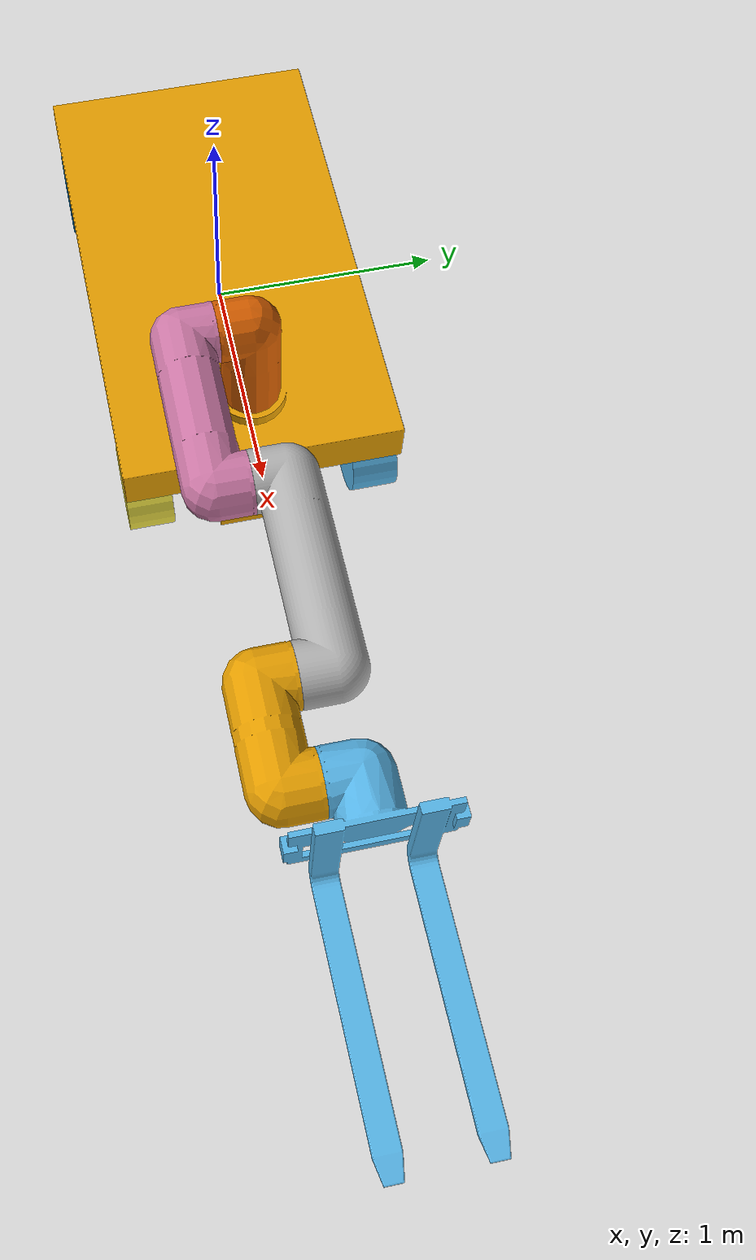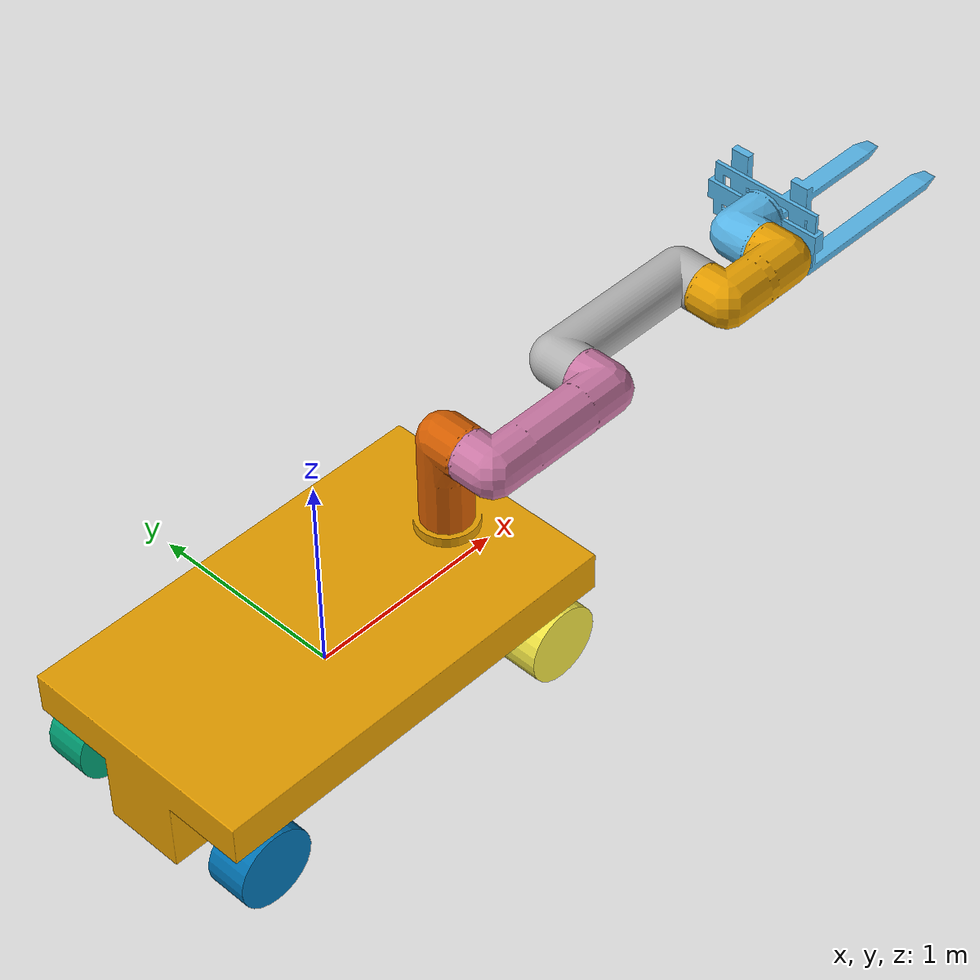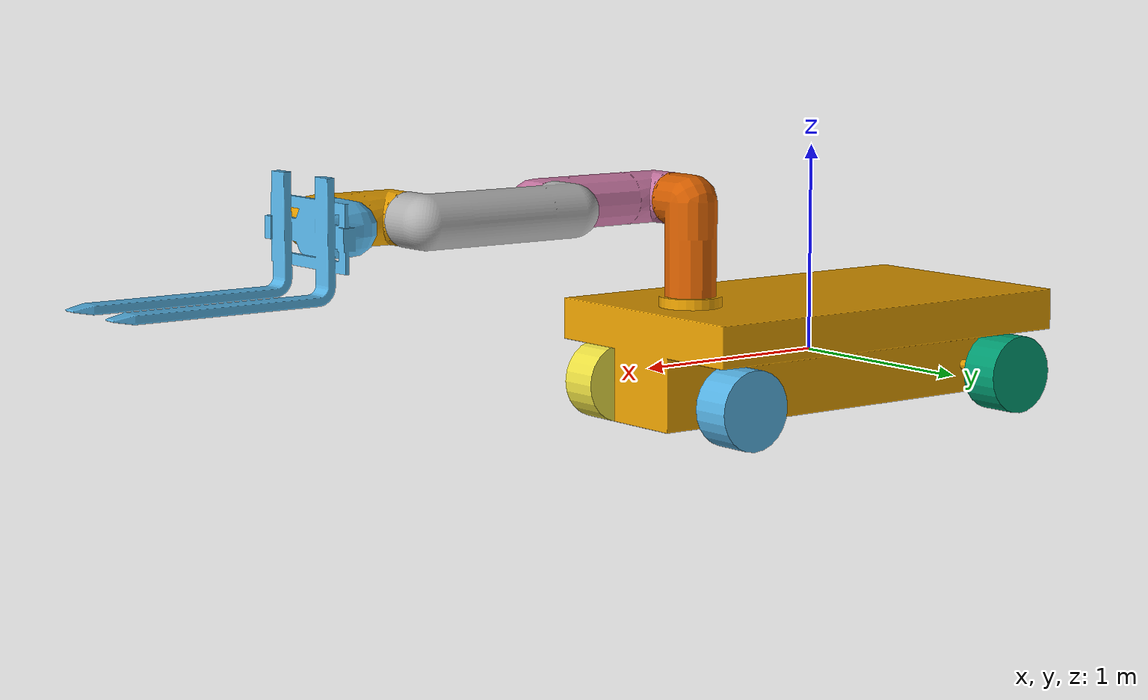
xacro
<?xml version='1.0'?>

<robot name="Forklift_robot" xmlns:xacro="http://www.ros.org/wiki/xacro">
  <xacro:include filename="$(find custom_robot_tutorial)/urdf/mobile_manipulator_robot.urdf.gazebo" />

<!-- MOBILE PLATFORM -->
<xacro:property name="base_length" value="2.1" />
<xacro:property name="base_width" value="1.2" />
<xacro:property name="base_height" value="0.55" />
<xacro:property name="base_density" value="1" />
<xacro:property name="base_mass" value="${base_length*base_height*base_width*base_density}" />
<link name="base_link">
  <visual>
    <origin xyz="0 0 0" rpy="0 0 0"/>
    <geometry>
      <mesh filename="package://custom_robot_tutorial/meshes/Base.stl" />
    </geometry>
  </visual>
  <collision>
    <origin xyz="0 0 0.0" rpy="0 0 0"/>
    <geometry>
      <box size="${base_length} ${base_width} ${base_height}"/>
    </geometry>
  </collision>
  <inertial>
    <origin xyz="0 0 0" rpy="0 0 0"/>
    <mass value="${base_mass}"/>
    <inertia
      ixx="${base_mass*(pow(base_height,2) + pow(base_width,2))/12}" ixy="0.0" ixz="0.0"
      iyy="${base_mass*(pow(base_length,2) + pow(base_height,2))/12}" iyz="0.0"
      izz="${base_mass*(pow(base_length,2) + pow(base_width,2))/12}"/>
  </inertial>
</link>

<!-- FRONT LEFT WHEEL-->
<joint type="continuous" name="front_left_wheel_joint">
  <origin xyz="0.85 0.5 -0.135" rpy="-${pi/2} 0 0"/>
  <child link="front_left_wheel_link"/>
  <parent link="base_link"/>
  <axis xyz="0 0 1" rpy="0 0 0"/>
  <limit effort="100" velocity="100"/>
</joint>

<xacro:property name="front_left_wheel_radius" value="0.19" />
<xacro:property name="front_left_wheel_length" value="0.2" />
<xacro:property name="front_left_wheel_density" value="1.0" />
<xacro:property name="front_left_wheel_mass" value="${pi*front_left_wheel_length*pow(front_left_wheel_radius,2)*front_left_wheel_density}" />

<link name="front_left_wheel_link">
  <visual>
    <origin xyz="0 0 0" rpy="0 0 0"/>
    <geometry>
      <cylinder length="${front_left_wheel_length}" radius="${front_left_wheel_radius}"/>
    </geometry>
  </visual>
  <collision>
    <origin xyz="0 0 0" rpy="0 0 0"/>
    <geometry>
      <cylinder length="${front_left_wheel_length}" radius="${front_left_wheel_radius}"/>
    </geometry>
  </collision>
  <inertial>
    <origin xyz="0 0 0" rpy="0 0 0"/>
    <mass value="${front_left_wheel_mass}"/>
    <inertia
      ixx="${front_left_wheel_mass*(3*pow(front_left_wheel_radius,2)+pow(front_left_wheel_length,2))/12}" ixy="0.0" ixz="0.0"
      iyy="${front_left_wheel_mass*(3*pow(front_left_wheel_radius,2)+pow(front_left_wheel_length,2))/12}" iyz="0.0"
      izz="${front_left_wheel_mass*pow(front_left_wheel_radius,2)/2}"/>
  </inertial>
</link>

<!-- BACK LEFT WHEEL-->
<joint type="continuous" name="back_left_wheel_joint">
  <origin xyz="-0.85 0.5 -0.135" rpy="-${pi/2} 0 0"/>
  <child link="back_left_wheel_link"/>
  <parent link="base_link"/>
  <axis xyz="0 0 1" rpy="0 0 0"/>
  <limit effort="100" velocity="100"/>
</joint>

<xacro:property name="back_left_wheel_radius" value="0.19" />
<xacro:property name="back_left_wheel_length" value="0.2" />
<xacro:property name="back_left_wheel_density" value="1.0" />
<xacro:property name="back_left_wheel_mass" value="${pi*back_left_wheel_length*pow(back_left_wheel_radius,2)*back_left_wheel_density}" />

<link name="back_left_wheel_link">
  <visual>
    <origin xyz="0 0 0" rpy="0 0 0"/>
    <geometry>
      <cylinder length="${back_left_wheel_length}" radius="${back_left_wheel_radius}"/>
    </geometry>
  </visual>
  <collision>
    <origin xyz="0 0 0" rpy="0 0 0"/>
    <geometry>
      <cylinder length="${back_left_wheel_length}" radius="${back_left_wheel_radius}"/>
    </geometry>
  </collision>
  <inertial>
    <origin xyz="0 0 0" rpy="0 0 0"/>
    <mass value="${back_left_wheel_mass}"/>
    <inertia
      ixx="${back_left_wheel_mass*(3*pow(back_left_wheel_radius,2)+pow(back_left_wheel_length,2))/12}" ixy="0.0" ixz="0.0"
      iyy="${back_left_wheel_mass*(3*pow(back_left_wheel_radius,2)+pow(back_left_wheel_length,2))/12}" iyz="0.0"
      izz="${back_left_wheel_mass*pow(back_left_wheel_radius,2)/2}"/>
  </inertial>
</link>

<!-- FRONT RIGHT WHEEL-->
<joint type="continuous" name="front_right_wheel_joint">
  <origin xyz="0.85 -0.5 -0.135" rpy="-${pi/2} 0 0"/>
  <child link="front_right_wheel_link"/>
  <parent link="base_link"/>
  <axis xyz="0 0 1" rpy="0 0 0"/>
  <limit effort="100" velocity="100"/>
</joint>

<xacro:property name="front_right_wheel_radius" value="0.19" />
<xacro:property name="front_right_wheel_length" value="0.2" />
<xacro:property name="front_right_wheel_density" value="1.0" />
<xacro:property name="front_right_wheel_mass" value="${pi*front_right_wheel_length*pow(front_right_wheel_radius,2)*front_right_wheel_density}" />

<link name="front_right_wheel_link">
  <visual>
    <origin xyz="0 0 0" rpy="0 0 0"/>
    <geometry>
      <cylinder length="${front_right_wheel_length}" radius="${front_right_wheel_radius}"/>
    </geometry>
  </visual>
  <collision>
    <origin xyz="0 0 0" rpy="0 0 0"/>
    <geometry>
      <cylinder length="${front_right_wheel_length}" radius="${front_right_wheel_radius}"/>
    </geometry>
  </collision>
  <inertial>
    <origin xyz="0 0 0" rpy="0 0 0"/>
    <mass value="${front_right_wheel_mass}"/>
    <inertia
      ixx="${front_right_wheel_mass*(3*pow(front_right_wheel_radius,2)+pow(front_right_wheel_length,2))/12}" ixy="0.0" ixz="0.0"
      iyy="${front_right_wheel_mass*(3*pow(front_right_wheel_radius,2)+pow(front_right_wheel_length,2))/12}" iyz="0.0"
      izz="${front_right_wheel_mass*pow(front_right_wheel_radius,2)/2}"/>
  </inertial>
</link>

<!-- BACK RIGHT WHEEL-->
<joint type="continuous" name="back_right_wheel_joint">
  <origin xyz="-0.85 -0.5 -0.135" rpy="-${pi/2} 0 0"/>
  <child link="back_right_wheel_link"/>
  <parent link="base_link"/>
  <axis xyz="0 0 1" rpy="0 0 0"/>
  <limit effort="100" velocity="100"/>
</joint>

<xacro:property name="back_right_wheel_radius" value="0.19" />
<xacro:property name="back_right_wheel_length" value="0.2" />
<xacro:property name="back_right_wheel_density" value="1.0" />
<xacro:property name="back_right_wheel_mass" value="${pi*back_right_wheel_length*pow(back_right_wheel_radius,2)*back_right_wheel_density}" />

<link name="back_right_wheel_link">
  <visual>
    <origin xyz="0 0 0" rpy="0 0 0"/>
    <geometry>
      <cylinder length="${back_right_wheel_length}" radius="${back_right_wheel_radius}"/>
    </geometry>
  </visual>
  <collision>
    <origin xyz="0 0 0" rpy="0 0 0"/>
    <geometry>
      <cylinder length="${back_right_wheel_length}" radius="${back_right_wheel_radius}"/>
    </geometry>
  </collision>
  <inertial>
    <origin xyz="0 0 0" rpy="0 0 0"/>
    <mass value="${back_right_wheel_mass}"/>
    <inertia
      ixx="${back_right_wheel_mass*(3*pow(back_right_wheel_radius,2)+pow(back_right_wheel_length,2))/12}" ixy="0.0" ixz="0.0"
      iyy="${back_right_wheel_mass*(3*pow(back_right_wheel_radius,2)+pow(back_right_wheel_length,2))/12}" iyz="0.0"
      izz="${back_right_wheel_mass*pow(back_right_wheel_radius,2)/2}"/>
  </inertial>
</link>

<!-- ARM BASE-->
<joint type="revolute" name="arm_base_joint">
  <origin xyz="0.75 0 0.325" rpy="0 0 0"/>
  <child link="arm_base_link"/>
  <parent link="base_link"/>
  <axis xyz="0 0 1" rpy="0 0 0"/>
  <limit effort="100" velocity="100" lower="-${pi}" upper="${pi}"/>
</joint>

<xacro:property name="arm_base_radius" value="0.125" />
<xacro:property name="arm_base_length" value="0.375" />
<xacro:property name="arm_base_density" value="1.0" />
<xacro:property name="arm_base_mass" value="${pi*arm_base_length*pow(arm_base_radius,2)*arm_base_density}" />

<link name="arm_base_link">
  <visual>
    <origin xyz="0 0 0" rpy="0 0 0"/>
    <geometry>
      <mesh filename="package://custom_robot_tutorial/meshes/arm_base_v2.stl" />
    </geometry>
  </visual>
  <collision>
    <origin xyz="0 0 ${arm_base_length/2}" rpy="0 0 0"/>
    <geometry>
      <cylinder length="${arm_base_length}" radius="${arm_base_radius}"/>
    </geometry>
  </collision>
  <inertial>
    <origin xyz="0 0 0" rpy="0 0 0"/>
    <mass value="${arm_base_mass}"/>
    <inertia
      ixx="${arm_base_mass*(3*pow(arm_base_radius,2)+pow(arm_base_length,2))/12}" ixy="0.0" ixz="0.0"
      iyy="${arm_base_mass*(3*pow(arm_base_radius,2)+pow(arm_base_length,2))/12}" iyz="0.0"
      izz="${arm_base_mass*pow(arm_base_radius,2)/2}"/>
  </inertial>
</link>

<transmission name="arm_base_tran">
  <type>transmission_interface/SimpleTransmission</type>
  <joint name="arm_base_joint">
    <hardwareInterface>hardware_interface/PositionJointInterface</hardwareInterface>
  </joint>
  <actuator name="arm_base_motor">
    <hardwareInterface>hardware_interface/PositionJointInterface</hardwareInterface>
    <mechanicalReduction>1</mechanicalReduction>
  </actuator>
</transmission>

<!-- ARM LINK1-->
<joint type="revolute" name="arm_link1_joint">
  <origin xyz="0 -0.14 0.45" rpy="${pi/2} 0 0"/>
  <child link="arm_link1_link"/>
  <parent link="arm_base_link"/>
  <axis xyz="0 0 1" rpy="0 0 0"/>
  <limit effort="100" velocity="100" lower="-${pi}" upper="${pi}"/>
</joint>

<xacro:property name="arm_link1_radius" value="0.125" />
<xacro:property name="arm_link1_length" value="0.85" />
<xacro:property name="arm_link1_density" value="1.0" />
<xacro:property name="arm_link1_mass" value="${pi*arm_link1_length*pow(arm_link1_radius,2)*arm_link1_density}" />

<link name="arm_link1_link">
  <visual>
    <origin xyz="0 0 0" rpy="0 0 0"/>
    <geometry>
      <mesh filename="package://custom_robot_tutorial/meshes/arm_link1.stl" />
    </geometry>
  </visual>
  <collision>
    <origin xyz="${arm_link1_length/2 - arm_link1_radius/2} 0 0.14" rpy="0 ${pi/2} 0"/>
    <geometry>
      <cylinder length="${arm_link1_length}" radius="${arm_link1_radius}"/>
    </geometry>
  </collision>
  <inertial>
    <origin xyz="0 0 0" rpy="0 0 0"/>
    <mass value="${arm_link1_mass}"/>
    <inertia
      ixx="${arm_link1_mass*(3*pow(arm_link1_radius,2)+pow(arm_link1_length,2))/12}" ixy="0.0" ixz="0.0"
      iyy="${arm_link1_mass*(3*pow(arm_link1_radius,2)+pow(arm_link1_length,2))/12}" iyz="0.0"
      izz="${arm_link1_mass*pow(arm_link1_radius,2)/2}"/>
  </inertial>
</link>

<transmission name="arm_link1_tran">
  <type>transmission_interface/SimpleTransmission</type>
  <joint name="arm_link1_joint">
    <hardwareInterface>hardware_interface/PositionJointInterface</hardwareInterface>
  </joint>
  <actuator name="arm_link1_motor">
    <hardwareInterface>hardware_interface/PositionJointInterface</hardwareInterface>
    <mechanicalReduction>1</mechanicalReduction>
  </actuator>
</transmission>

<!-- ARM LINK2-->
<joint type="revolute" name="arm_link2_joint">
  <origin xyz="0.7 0 0" rpy="0 0 0"/>
  <child link="arm_link2_link"/>
  <parent link="arm_link1_link"/>
  <axis xyz="0 0 1" rpy="0 0 0"/>
  <limit effort="100" velocity="100" lower="-${pi}" upper="${pi}"/>
</joint>

<xacro:property name="arm_link2_radius" value="0.125" />
<xacro:property name="arm_link2_length" value="1.05" />
<xacro:property name="arm_link2_density" value="1.0" />
<xacro:property name="arm_link2_mass" value="${pi*arm_link2_length*pow(arm_link2_radius,2)*arm_link2_density}" />

<link name="arm_link2_link">
  <visual>
    <origin xyz="0 0 0" rpy="0 0 ${pi/2}"/>
    <geometry>
      <mesh filename="package://custom_robot_tutorial/meshes/arm_link2.stl" />
    </geometry>
  </visual>
  <collision>
    <origin xyz="0 -0.4 -0.14" rpy="${pi/2} 0 0"/>
    <geometry>
      <cylinder length="${arm_link2_length}" radius="${arm_link2_radius}"/>
    </geometry>
  </collision>
  <inertial>
    <origin xyz="0 0 0" rpy="0 0 0"/>
    <mass value="${arm_link2_mass}"/>
    <inertia
      ixx="${arm_link2_mass*(3*pow(arm_link2_radius,2)+pow(arm_link2_length,2))/12}" ixy="0.0" ixz="0.0"
      iyy="${arm_link2_mass*(3*pow(arm_link2_radius,2)+pow(arm_link2_length,2))/12}" iyz="0.0"
      izz="${arm_link2_mass*pow(arm_link2_radius,2)/2}"/>
  </inertial>
</link>

<transmission name="arm_link2_tran">
  <type>transmission_interface/SimpleTransmission</type>
  <joint name="arm_link2_joint">
    <hardwareInterface>hardware_interface/PositionJointInterface</hardwareInterface>
  </joint>
  <actuator name="arm_link2_motor">
    <hardwareInterface>hardware_interface/PositionJointInterface</hardwareInterface>
    <mechanicalReduction>1</mechanicalReduction>
  </actuator>
</transmission>

<!-- ARM LINK3-->
<joint type="revolute" name="arm_link3_joint">
  <origin xyz="0.8 0 0" rpy="0 0 0"/>
  <child link="arm_link3_link"/>
  <parent link="arm_link2_link"/>
  <axis xyz="0 0 1" rpy="0 0 0"/>
  <limit effort="100" velocity="100" lower="-${pi}" upper="${pi}"/>
</joint>

<xacro:property name="arm_link3_radius" value="0.125" />
<xacro:property name="arm_link3_length" value="0.65" />
<xacro:property name="arm_link3_density" value="1.0" />
<xacro:property name="arm_link3_mass" value="${pi*arm_link3_length*pow(arm_link3_radius,2)*arm_link3_density}" />

<link name="arm_link3_link">
  <visual>
    <origin xyz="0 0 0" rpy="0 0 0"/>
    <geometry>
      <mesh filename="package://custom_robot_tutorial/meshes/arm_link3.stl" />
    </geometry>
  </visual>
  <collision>
    <origin xyz="0.2 0 ${arm_link3_radius}" rpy="0 ${pi/2} 0"/>
    <geometry>
      <cylinder length="${arm_link3_length}" radius="${arm_link3_radius}"/>
    </geometry>
  </collision>
  <inertial>
    <origin xyz="0 0 0" rpy="0 0 0"/>
    <mass value="${arm_link3_mass}"/>
    <inertia
      ixx="${arm_link3_mass*(3*pow(arm_link3_radius,2)+pow(arm_link3_length,2))/12}" ixy="0.0" ixz="0.0"
      iyy="${arm_link3_mass*(3*pow(arm_link3_radius,2)+pow(arm_link3_length,2))/12}" iyz="0.0"
      izz="${arm_link3_mass*pow(arm_link3_radius,2)/2}"/>
  </inertial>
</link>

<transmission name="arm_link3_tran">
  <type>transmission_interface/SimpleTransmission</type>
  <joint name="arm_link3_joint">
    <hardwareInterface>hardware_interface/PositionJointInterface</hardwareInterface>
  </joint>
  <actuator name="arm_link3_motor">
    <hardwareInterface>hardware_interface/PositionJointInterface</hardwareInterface>
    <mechanicalReduction>1</mechanicalReduction>
  </actuator>
</transmission>

<!-- PALLEGAFFEL LINK-->
<joint type="revolute" name="pallegaffel_joint">
  <origin xyz="0.4 0 0" rpy="0 0 0"/>
  <child link="pallegaffel_link"/>
  <parent link="arm_link3_link"/>
  <axis xyz="0 0 1" rpy="0 0 0"/>
  <limit effort="100" velocity="100" lower="-${pi}" upper="${pi}"/>
</joint>

<xacro:property name="pallegaffel_length" value="1" />
<xacro:property name="pallegaffel_width" value="0.04" />
<xacro:property name="pallegaffel_height" value="0.4" />
<xacro:property name="pallegaffel_density" value="1" />
<xacro:property name="pallegaffel_mass" value="${pallegaffel_length*pallegaffel_height*pallegaffel_width*pallegaffel_density}" />

<link name="pallegaffel_link">
  <visual>
    <origin xyz="0 0 0" rpy="0 0 0"/>
    <geometry>
      <mesh filename="package://custom_robot_tutorial/meshes/pallegaffel_link.stl" />
    </geometry>
  </visual>
  <collision>
    <origin xyz="0.75 -0.27 -0.125" rpy="0 0 0"/>
    <geometry>
      <box size="${pallegaffel_length} ${pallegaffel_width} ${pallegaffel_height}"/>
    </geometry>
  </collision>
  <inertial>
    <origin xyz="0 0 0" rpy="0 ${pi/2} 0"/>
    <mass value="${pallegaffel_mass}"/>
    <inertia
      ixx="${pallegaffel_mass*(pow(pallegaffel_height,2) + pow(pallegaffel_width,2))/12}" ixy="0.0" ixz="0.0"
      iyy="${pallegaffel_mass*(pow(pallegaffel_length,2) + pow(pallegaffel_height,2))/12}" iyz="0.0"
      izz="${pallegaffel_mass*(pow(pallegaffel_length,2) + pow(pallegaffel_width,2))/12}"/>
  </inertial>
</link>

<transmission name="pallegaffel_tran">
  <type>transmission_interface/SimpleTransmission</type>
  <joint name="pallegaffel_joint">
    <hardwareInterface>hardware_interface/PositionJointInterface</hardwareInterface>
  </joint>
  <actuator name="pallegaffel_motor">
    <hardwareInterface>hardware_interface/PositionJointInterface</hardwareInterface>
    <mechanicalReduction>1</mechanicalReduction>
  </actuator>
</transmission>

  </robot>
